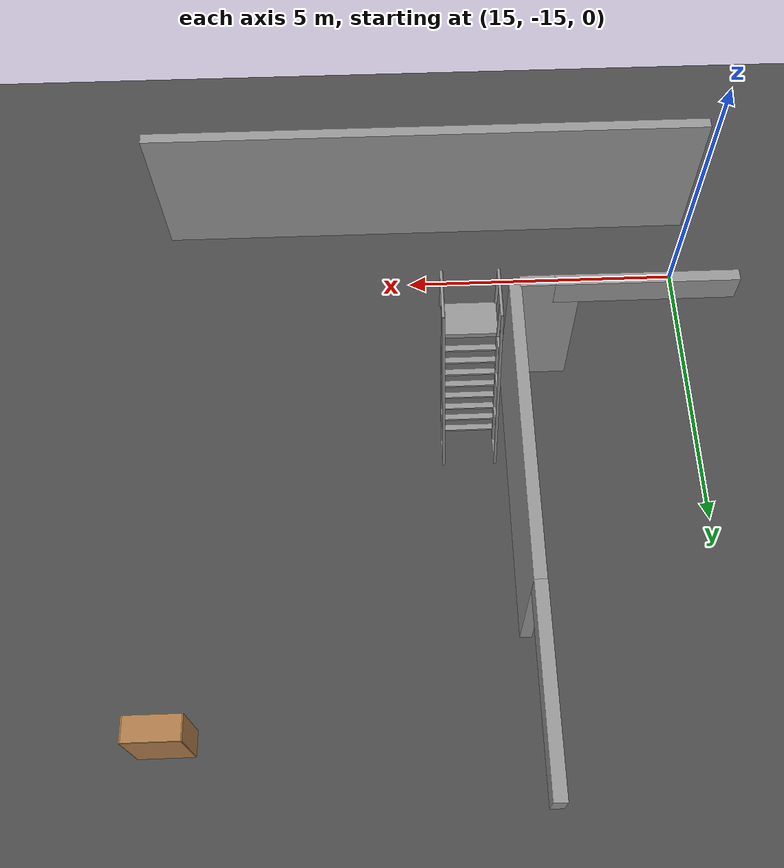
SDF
<sdf version="1.6">
 <world name="default">
  <model name="bookshelf">
   <static>1</static>
   <link name="link">
    <inertial><mass>1</mass></inertial>
    <collision name="back">
     <pose>0 0.005 0.6 0 -0 0</pose>
     <geometry><box><size>0.9 0.01 1.2</size></box></geometry>
    </collision>
    <visual name="visual1">
     <pose>0 0.005 0.6 0 -0 0</pose>
     <geometry><box><size>0.9 0.01 1.2</size></box></geometry>
     <material>
      <script><uri>file://media/materials/scripts/gazebo.material</uri><name>Gazebo/Wood</name></script>
     </material>
    </visual>
    <collision name="left_side">
     <pose>0.45 -0.195 0.6 0 -0 0</pose>
     <geometry><box><size>0.02 0.4 1.2</size></box></geometry>
    </collision>
    <visual name="visual2">
     <pose>0.45 -0.195 0.6 0 -0 0</pose>
     <geometry><box><size>0.02 0.4 1.2</size></box></geometry>
     <material>
      <script><uri>file://media/materials/scripts/gazebo.material</uri><name>Gazebo/Wood</name></script>
     </material>
    </visual>
    <collision name="right_side">
     <pose>-0.45 -0.195 0.6 0 -0 0</pose>
     <geometry><box><size>0.02 0.4 1.2</size></box></geometry>
    </collision>
    <visual name="visual3">
     <pose>-0.45 -0.195 0.6 0 -0 0</pose>
     <geometry><box><size>0.02 0.4 1.2</size></box></geometry>
     <material>
      <script><uri>file://media/materials/scripts/gazebo.material</uri><name>Gazebo/Wood</name></script>
     </material>
    </visual>
    <collision name="bottom">
     <pose>0 -0.195 0.03 0 -0 0</pose>
     <geometry><box><size>0.88 0.4 0.06</size></box></geometry>
    </collision>
    <visual name="visual4">
     <pose>0 -0.195 0.03 0 -0 0</pose>
     <geometry><box><size>0.88 0.4 0.06</size></box></geometry>
     <material>
      <script><uri>file://media/materials/scripts/gazebo.material</uri><name>Gazebo/Wood</name></script>
     </material>
    </visual>
    <collision name="top">
     <pose>0 -0.195 1.19 0 -0 0</pose>
     <geometry><box><size>0.88 0.4 0.02</size></box></geometry>
    </collision>
    <visual name="visual5">
     <pose>0 -0.195 1.19 0 -0 0</pose>
     <geometry><box><size>0.88 0.4 0.02</size></box></geometry>
     <material>
      <script><uri>file://media/materials/scripts/gazebo.material</uri><name>Gazebo/Wood</name></script>
     </material>
    </visual>
    <collision name="low_shelf">
     <pose>0 -0.195 0.43 0 -0 0</pose>
     <geometry><box><size>0.88 0.4 0.02</size></box></geometry>
    </collision>
    <visual name="visual6">
     <pose>0 -0.195 0.43 0 -0 0</pose>
     <geometry><box><size>0.88 0.4 0.02</size></box></geometry>
     <material>
      <script><uri>file://media/materials/scripts/gazebo.material</uri><name>Gazebo/Wood</name></script>
     </material>
    </visual>
    <collision name="high_shelf">
     <pose>0 -0.195 0.8 0 -0 0</pose>
     <geometry><box><size>0.88 0.4 0.02</size></box></geometry>
    </collision>
    <visual name="visual7">
     <pose>0 -0.195 0.8 0 -0 0</pose>
     <geometry><box><size>0.88 0.4 0.02</size></box></geometry>
     <material>
      <script><uri>file://media/materials/scripts/gazebo.material</uri><name>Gazebo/Wood</name></script>
     </material>
    </visual>
   </link>
   <pose>24 -6.34826 0 0 -0 0</pose>
  </model>
  <model name="grey_wall_5">
   <static>1</static>
   <link name="link">
    <pose>0 0 1.4 0 -0 0</pose>
    <collision name="collision"><geometry><box><size>10 0.2 2.8</size></box></geometry></collision>
    <visual name="visual">
     <cast_shadows>0</cast_shadows>
     <geometry><box><size>10 0.2 2.8</size></box></geometry>
     <material>
      <script>
       <uri>model://grey_wall/materials/scripts</uri>
       <uri>model://grey_wall/materials/textures</uri>
       <name>vrc/grey_wall</name>
      </script>
     </material>
    </visual>
   </link>
   <pose>19.6162 -16.3247 0 0 -0 0</pose>
  </model>
  <model name="grey_wall_13">
   <static>1</static>
   <link name="link">
    <pose>0 0 1.4 0 -0 0</pose>
    <collision name="collision"><geometry><box><size>5 0.2 2.8</size></box></geometry></collision>
    <visual name="visual">
     <cast_shadows>0</cast_shadows>
     <geometry><box><size>5 0.2 2.8</size></box></geometry>
     <material>
      <script>
       <uri>model://grey_wall/materials/scripts</uri>
       <uri>model://grey_wall/materials/textures</uri>
       <name>vrc/grey_wall</name>
      </script>
     </material>
    </visual>
   </link>
   <pose>18.3083 -10.5428 0 0 -0 1.57</pose>
  </model>
  <model name="asphalt_plane">
   <static>1</static>
   <link name="link">
    <collision name="collision"><geometry><box><size>40 40 0.01</size></box></geometry></collision>
    <visual name="visual">
     <cast_shadows>0</cast_shadows>
     <geometry><box><size>40 40 0.01</size></box></geometry>
     <material>
      <script>
       <uri>model://asphalt_plane/materials/scripts</uri>
       <uri>model://asphalt_plane/materials/textures</uri>
       <name>vrc/asphalt</name>
      </script>
     </material>
    </visual>
   </link>
   <pose>30.3856 -0.465765 0 0 -0 1.57</pose>
  </model>
  <model name="ladder_75deg_2rails_clone">
   <static>1</static>
   <link name="step0">
    <pose>0 0.071453 0.266667 0 -0 0</pose>
    <inertial>
     <mass>9.75482</mass>
     <inertia>
      <ixx>0.00957124</ixx>
      <iyy>0.65963</iyy>
      <izz>0.666842</izz>
      <ixy>0</ixy>
      <ixz>0</ixz>
      <iyz>0</iyz>
     </inertia>
    </inertial>
    <collision name="collision"><geometry><box><size>0.9 0.1016 0.0381</size></box></geometry></collision>
    <visual name="visual">
     <geometry><box><size>0.9 0.1016 0.0381</size></box></geometry>
     <material>
      <script><uri>file://media/materials/scripts/gazebo.material</uri><name>Gazebo/Grey</name></script>
     </material>
    </visual>
   </link>
   <link name="step1">
    <pose>0 0.142906 0.533333 0 -0 0</pose>
    <inertial>
     <mass>9.75482</mass>
     <inertia>
      <ixx>0.00957124</ixx>
      <iyy>0.65963</iyy>
      <izz>0.666842</izz>
      <ixy>0</ixy>
      <ixz>0</ixz>
      <iyz>0</iyz>
     </inertia>
    </inertial>
    <collision name="collision"><geometry><box><size>0.9 0.1016 0.0381</size></box></geometry></collision>
    <visual name="visual">
     <geometry><box><size>0.9 0.1016 0.0381</size></box></geometry>
     <material>
      <script><uri>file://media/materials/scripts/gazebo.material</uri><name>Gazebo/Grey</name></script>
     </material>
    </visual>
   </link>
   <link name="step2">
    <pose>0 0.214359 0.8 0 -0 0</pose>
    <inertial>
     <mass>9.75482</mass>
     <inertia>
      <ixx>0.00957124</ixx>
      <iyy>0.65963</iyy>
      <izz>0.666842</izz>
      <ixy>0</ixy>
      <ixz>0</ixz>
      <iyz>0</iyz>
     </inertia>
    </inertial>
    <collision name="collision"><geometry><box><size>0.9 0.1016 0.0381</size></box></geometry></collision>
    <visual name="visual">
     <geometry><box><size>0.9 0.1016 0.0381</size></box></geometry>
     <material>
      <script><uri>file://media/materials/scripts/gazebo.material</uri><name>Gazebo/Grey</name></script>
     </material>
    </visual>
   </link>
   <link name="step3">
    <pose>0 0.285812 1.06667 0 -0 0</pose>
    <inertial>
     <mass>9.75482</mass>
     <inertia>
      <ixx>0.00957124</ixx>
      <iyy>0.65963</iyy>
      <izz>0.666842</izz>
      <ixy>0</ixy>
      <ixz>0</ixz>
      <iyz>0</iyz>
     </inertia>
    </inertial>
    <collision name="collision"><geometry><box><size>0.9 0.1016 0.0381</size></box></geometry></collision>
    <visual name="visual">
     <geometry><box><size>0.9 0.1016 0.0381</size></box></geometry>
     <material>
      <script><uri>file://media/materials/scripts/gazebo.material</uri><name>Gazebo/Grey</name></script>
     </material>
    </visual>
   </link>
   <link name="step4">
    <pose>0 0.357266 1.33333 0 -0 0</pose>
    <inertial>
     <mass>9.75482</mass>
     <inertia>
      <ixx>0.00957124</ixx>
      <iyy>0.65963</iyy>
      <izz>0.666842</izz>
      <ixy>0</ixy>
      <ixz>0</ixz>
      <iyz>0</iyz>
     </inertia>
    </inertial>
    <collision name="collision"><geometry><box><size>0.9 0.1016 0.0381</size></box></geometry></collision>
    <visual name="visual">
     <geometry><box><size>0.9 0.1016 0.0381</size></box></geometry>
     <material>
      <script><uri>file://media/materials/scripts/gazebo.material</uri><name>Gazebo/Grey</name></script>
     </material>
    </visual>
   </link>
   <link name="step5">
    <pose>0 0.428719 1.6 0 -0 0</pose>
    <inertial>
     <mass>9.75482</mass>
     <inertia>
      <ixx>0.00957124</ixx>
      <iyy>0.65963</iyy>
      <izz>0.666842</izz>
      <ixy>0</ixy>
      <ixz>0</ixz>
      <iyz>0</iyz>
     </inertia>
    </inertial>
    <collision name="collision"><geometry><box><size>0.9 0.1016 0.0381</size></box></geometry></collision>
    <visual name="visual">
     <geometry><box><size>0.9 0.1016 0.0381</size></box></geometry>
     <material>
      <script><uri>file://media/materials/scripts/gazebo.material</uri><name>Gazebo/Grey</name></script>
     </material>
    </visual>
   </link>
   <link name="step6">
    <pose>0 0.500172 1.86667 0 -0 0</pose>
    <inertial>
     <mass>9.75482</mass>
     <inertia>
      <ixx>0.00957124</ixx>
      <iyy>0.65963</iyy>
      <izz>0.666842</izz>
      <ixy>0</ixy>
      <ixz>0</ixz>
      <iyz>0</iyz>
     </inertia>
    </inertial>
    <collision name="collision"><geometry><box><size>0.9 0.1016 0.0381</size></box></geometry></collision>
    <visual name="visual">
     <geometry><box><size>0.9 0.1016 0.0381</size></box></geometry>
     <material>
      <script><uri>file://media/materials/scripts/gazebo.material</uri><name>Gazebo/Grey</name></script>
     </material>
    </visual>
   </link>
   <link name="step7">
    <pose>0 0.571625 2.13333 0 -0 0</pose>
    <inertial>
     <mass>9.75482</mass>
     <inertia>
      <ixx>0.00957124</ixx>
      <iyy>0.65963</iyy>
      <izz>0.666842</izz>
      <ixy>0</ixy>
      <ixz>0</ixz>
      <iyz>0</iyz>
     </inertia>
    </inertial>
    <collision name="collision"><geometry><box><size>0.9 0.1016 0.0381</size></box></geometry></collision>
    <visual name="visual">
     <geometry><box><size>0.9 0.1016 0.0381</size></box></geometry>
     <material>
      <script><uri>file://media/materials/scripts/gazebo.material</uri><name>Gazebo/Grey</name></script>
     </material>
    </visual>
   </link>
   <link name="landing">
    <pose>0 0.943078 2.4 0 -0 0</pose>
    <inertial>
     <mass>57.6072</mass>
     <inertia><ixx>1.73518</ixx><iyy>3.89545</iyy><izz>5.6167</izz><ixy>0</ixy><ixz>0</ixz><iyz>0</iyz></inertia>
    </inertial>
    <collision name="collision"><geometry><box><size>0.9 0.6 0.1016</size></box></geometry></collision>
    <visual name="visual">
     <geometry><box><size>0.9 0.6 0.1016</size></box></geometry>
     <material>
      <script><uri>file://media/materials/scripts/gazebo.material</uri><name>Gazebo/Grey</name></script>
     </material>
    </visual>
   </link>
   <link name="left_side_wall">
    <pose>-0.45 0.321539 1.2 1.309 -0 0</pose>
    <collision name="collision"><geometry><box><size>0.0508 2.56466 0.13</size></box></geometry></collision>
    <visual name="visual">
     <geometry><box><size>0.0508 2.56466 0.13</size></box></geometry>
     <material>
      <script><uri>file://media/materials/scripts/gazebo.material</uri><name>Gazebo/Grey</name></script>
     </material>
    </visual>
   </link>
   <link name="right_side_wall">
    <pose>0.45 0.321539 1.2 1.309 -0 0</pose>
    <collision name="collision"><geometry><box><size>0.0508 2.56466 0.13</size></box></geometry></collision>
    <visual name="visual">
     <geometry><box><size>0.0508 2.56466 0.13</size></box></geometry>
     <material>
      <script><uri>file://media/materials/scripts/gazebo.material</uri><name>Gazebo/Grey</name></script>
     </material>
    </visual>
   </link>
   <link name="left_railing_long">
    <pose>-0.45 -0.053461 1.66651 -0.261799 0 0</pose>
    <collision name="collision">
     <geometry><cylinder><radius>0.02413</radius><length>3.51529</length></cylinder></geometry>
    </collision>
    <visual name="visual">
     <geometry><cylinder><radius>0.02413</radius><length>3.51529</length></cylinder></geometry>
     <material>
      <script><uri>file://media/materials/scripts/gazebo.material</uri><name>Gazebo/Grey</name></script>
     </material>
    </visual>
   </link>
   <link name="left_railing_upright0">
    <pose>-0.45 -0.210089 0.056293 1.309 -0 0</pose>
    <collision name="collision">
     <geometry><cylinder><radius>0.02413</radius><length>0.482963</length></cylinder></geometry>
    </collision>
    <visual name="visual">
     <geometry><cylinder><radius>0.02413</radius><length>0.482963</length></cylinder></geometry>
     <material>
      <script><uri>file://media/materials/scripts/gazebo.material</uri><name>Gazebo/Grey</name></script>
     </material>
    </visual>
   </link>
   <link name="left_railing_upright1">
    <pose>-0.45 0.00427 0.856293 1.309 -0 0</pose>
    <collision name="collision">
     <geometry><cylinder><radius>0.02413</radius><length>0.482963</length></cylinder></geometry>
    </collision>
    <visual name="visual">
     <geometry><cylinder><radius>0.02413</radius><length>0.482963</length></cylinder></geometry>
     <material>
      <script><uri>file://media/materials/scripts/gazebo.material</uri><name>Gazebo/Grey</name></script>
     </material>
    </visual>
   </link>
   <link name="left_railing_upright2">
    <pose>-0.45 0.21863 1.65629 1.309 -0 0</pose>
    <collision name="collision">
     <geometry><cylinder><radius>0.02413</radius><length>0.482963</length></cylinder></geometry>
    </collision>
    <visual name="visual">
     <geometry><cylinder><radius>0.02413</radius><length>0.482963</length></cylinder></geometry>
     <material>
      <script><uri>file://media/materials/scripts/gazebo.material</uri><name>Gazebo/Grey</name></script>
     </material>
    </visual>
   </link>
   <link name="left_railing_upright3">
    <pose>-0.45 0.432989 2.45629 1.309 -0 0</pose>
    <collision name="collision">
     <geometry><cylinder><radius>0.02413</radius><length>0.482963</length></cylinder></geometry>
    </collision>
    <visual name="visual">
     <geometry><cylinder><radius>0.02413</radius><length>0.482963</length></cylinder></geometry>
     <material>
      <script><uri>file://media/materials/scripts/gazebo.material</uri><name>Gazebo/Grey</name></script>
     </material>
    </visual>
   </link>
   <link name="left_railing_landing_top">
    <pose>-0.45 0.818078 3.35714 1.5708 -0 0</pose>
    <collision name="collision">
     <geometry><cylinder><radius>0.02413</radius><length>0.87413</length></cylinder></geometry>
    </collision>
    <visual name="visual">
     <geometry><cylinder><radius>0.02413</radius><length>0.87413</length></cylinder></geometry>
     <material>
      <script><uri>file://media/materials/scripts/gazebo.material</uri><name>Gazebo/Grey</name></script>
     </material>
    </visual>
   </link>
   <link name="left_railing_landing_upright_0">
    <pose>-0.45 0.643078 2.86651 0 -0 0</pose>
    <collision name="collision">
     <geometry><cylinder><radius>0.02413</radius><length>0.933013</length></cylinder></geometry>
    </collision>
    <visual name="visual">
     <geometry><cylinder><radius>0.02413</radius><length>0.933013</length></cylinder></geometry>
     <material>
      <script><uri>file://media/materials/scripts/gazebo.material</uri><name>Gazebo/Grey</name></script>
     </material>
    </visual>
   </link>
   <link name="left_railing_landing_upright_1">
    <pose>-0.45 1.24308 2.86651 0 -0 0</pose>
    <collision name="collision">
     <geometry><cylinder><radius>0.02413</radius><length>0.933013</length></cylinder></geometry>
    </collision>
    <visual name="visual">
     <geometry><cylinder><radius>0.02413</radius><length>0.933013</length></cylinder></geometry>
     <material>
      <script><uri>file://media/materials/scripts/gazebo.material</uri><name>Gazebo/Grey</name></script>
     </material>
    </visual>
   </link>
   <link name="right_railing_long">
    <pose>0.45 -0.053461 1.66651 -0.261799 0 0</pose>
    <collision name="collision">
     <geometry><cylinder><radius>0.02413</radius><length>3.51529</length></cylinder></geometry>
    </collision>
    <visual name="visual">
     <geometry><cylinder><radius>0.02413</radius><length>3.51529</length></cylinder></geometry>
     <material>
      <script><uri>file://media/materials/scripts/gazebo.material</uri><name>Gazebo/Grey</name></script>
     </material>
    </visual>
   </link>
   <link name="right_railing_upright0">
    <pose>0.45 -0.210089 0.056293 1.309 -0 0</pose>
    <collision name="collision">
     <geometry><cylinder><radius>0.02413</radius><length>0.482963</length></cylinder></geometry>
    </collision>
    <visual name="visual">
     <geometry><cylinder><radius>0.02413</radius><length>0.482963</length></cylinder></geometry>
     <material>
      <script><uri>file://media/materials/scripts/gazebo.material</uri><name>Gazebo/Grey</name></script>
     </material>
    </visual>
   </link>
   <link name="right_railing_upright1">
    <pose>0.45 0.00427 0.856293 1.309 -0 0</pose>
    <collision name="collision">
     <geometry><cylinder><radius>0.02413</radius><length>0.482963</length></cylinder></geometry>
    </collision>
    <visual name="visual">
     <geometry><cylinder><radius>0.02413</radius><length>0.482963</length></cylinder></geometry>
     <material>
      <script><uri>file://media/materials/scripts/gazebo.material</uri><name>Gazebo/Grey</name></script>
     </material>
    </visual>
   </link>
   <link name="right_railing_upright2">
    <pose>0.45 0.21863 1.65629 1.309 -0 0</pose>
    <collision name="collision">
     <geometry><cylinder><radius>0.02413</radius><length>0.482963</length></cylinder></geometry>
    </collision>
    <visual name="visual">
     <geometry><cylinder><radius>0.02413</radius><length>0.482963</length></cylinder></geometry>
     <material>
      <script><uri>file://media/materials/scripts/gazebo.material</uri><name>Gazebo/Grey</name></script>
     </material>
    </visual>
   </link>
   <link name="right_railing_upright3">
    <pose>0.45 0.432989 2.45629 1.309 -0 0</pose>
    <collision name="collision">
     <geometry><cylinder><radius>0.02413</radius><length>0.482963</length></cylinder></geometry>
    </collision>
    <visual name="visual">
     <geometry><cylinder><radius>0.02413</radius><length>0.482963</length></cylinder></geometry>
     <material>
      <script><uri>file://media/materials/scripts/gazebo.material</uri><name>Gazebo/Grey</name></script>
     </material>
    </visual>
   </link>
   <link name="right_railing_landing_top">
    <pose>0.45 0.818078 3.35714 1.5708 -0 0</pose>
    <collision name="collision">
     <geometry><cylinder><radius>0.02413</radius><length>0.87413</length></cylinder></geometry>
    </collision>
    <visual name="visual">
     <geometry><cylinder><radius>0.02413</radius><length>0.87413</length></cylinder></geometry>
     <material>
      <script><uri>file://media/materials/scripts/gazebo.material</uri><name>Gazebo/Grey</name></script>
     </material>
    </visual>
   </link>
   <link name="right_railing_landing_upright_0">
    <pose>0.45 0.643078 2.86651 0 -0 0</pose>
    <collision name="collision">
     <geometry><cylinder><radius>0.02413</radius><length>0.933013</length></cylinder></geometry>
    </collision>
    <visual name="visual">
     <geometry><cylinder><radius>0.02413</radius><length>0.933013</length></cylinder></geometry>
     <material>
      <script><uri>file://media/materials/scripts/gazebo.material</uri><name>Gazebo/Grey</name></script>
     </material>
    </visual>
   </link>
   <link name="right_railing_landing_upright_1">
    <pose>0.45 1.24308 2.86651 0 -0 0</pose>
    <collision name="collision">
     <geometry><cylinder><radius>0.02413</radius><length>0.933013</length></cylinder></geometry>
    </collision>
    <visual name="visual">
     <geometry><cylinder><radius>0.02413</radius><length>0.933013</length></cylinder></geometry>
     <material>
      <script><uri>file://media/materials/scripts/gazebo.material</uri><name>Gazebo/Grey</name></script>
     </material>
    </visual>
   </link>
   <pose>19.0608 -11.6975 -0 0 -0 3.1415</pose>
  </model>
  <model name="grey_wall">
   <static>1</static>
   <link name="link">
    <pose>0 0 1.4 0 -0 0</pose>
    <collision name="collision"><geometry><box><size>1 0.2 2.8</size></box></geometry></collision>
    <visual name="visual">
     <cast_shadows>0</cast_shadows>
     <geometry><box><size>1 0.2 2.8</size></box></geometry>
     <material>
      <script>
       <uri>model://grey_wall/materials/scripts</uri>
       <uri>model://grey_wall/materials/textures</uri>
       <name>vrc/grey_wall</name>
      </script>
     </material>
    </visual>
   </link>
   <pose>17.7282 -13.0991 0 0 -0 0</pose>
  </model>
  <model name="grey_wall_1">
   <static>1</static>
   <link name="link">
    <pose>0 0 1.4 0 -0 0</pose>
    <collision name="collision"><geometry><box><size>3 0.2 0.5</size></box></geometry></collision>
    <visual name="visual">
     <cast_shadows>0</cast_shadows>
     <geometry><box><size>3 0.2 0.5</size></box></geometry>
     <material>
      <script>
       <uri>model://grey_wall/materials/scripts</uri>
       <uri>model://grey_wall/materials/textures</uri>
       <name>vrc/grey_wall</name>
      </script>
     </material>
    </visual>
   </link>
   <pose>16.1539 -13.0956 1.15168 0 -0 0</pose>
  </model>
  <model name="grey_wall_2_clone_clone_2_clone">
   <static>1</static>
   <link name="link">
    <pose>0 0 1.4 0 -0 0</pose>
    <collision name="collision"><geometry><box><size>3 0.2 0.5</size></box></geometry></collision>
    <visual name="visual">
     <cast_shadows>0</cast_shadows>
     <geometry><box><size>3 0.2 0.5</size></box></geometry>
     <material>
      <script>
       <uri>model://grey_wall/materials/scripts</uri>
       <uri>model://grey_wall/materials/textures</uri>
       <name>vrc/grey_wall</name>
      </script>
     </material>
    </visual>
   </link>
   <pose>18.3076 -6.55294 1.16216 0 0 -1.57</pose>
  </model>
 </world>
</sdf>
